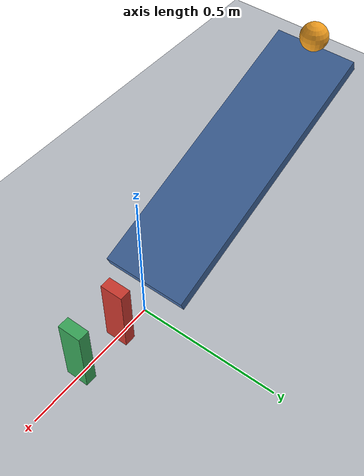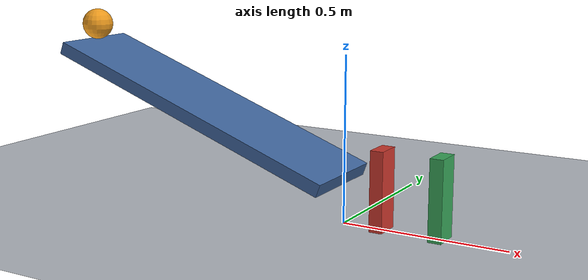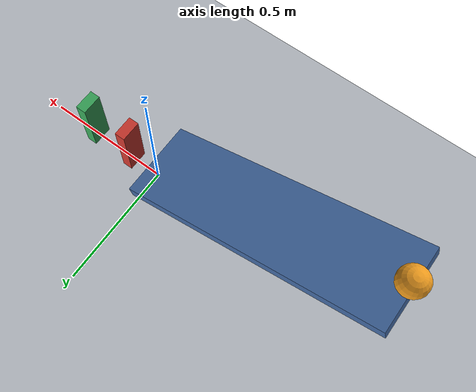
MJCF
<mujoco model="ramp_ball_domino_chain">
  <compiler angle="radian" inertiafromgeom="true"/>
  <option timestep="0.002" gravity="0 0 -9.81" integrator="implicitfast" cone="elliptic" iterations="100" tolerance="1e-10"/>
  <statistic center="-0.30 0 0.25" extent="1.60"/>

  <worldbody>
    <light name="overhead" pos="-0.3 -1 3" dir="0 0 -1" diffuse="0.85 0.85 0.85"/>
    <geom name="floor" type="plane" size="4 3 0.1" friction="0.70 0.005 0.005" condim="6" solref="0.008 0.690107" solimp="0.99 0.99 0.001" rgba="0.72 0.74 0.77 1"/>

    <!-- The upper deck is 1.00 m long and 0.30 m wide, descending
         toward +x at 20 degrees. Its low-end surface is (0, 0, 0.15). -->
    <body name="ramp1" pos="-0.476686713 0 0.302216219" quat="0.984807753 0 0.173648178 0">
      <geom name="ramp1_deck" type="box" size="0.50 0.15 0.02" friction="0.70 0.005 0.005" condim="6" solref="0.008 0.690107" solimp="0.99 0.99 0.001" rgba="0.25 0.40 0.62 1"/>
    </body>

    <!-- Initially tangent to the ramp's high end. -->
    <body name="ball1" pos="-0.922591614 0 0.539004774">
      <freejoint name="ball1_free"/>
      <geom name="ball1_sphere" type="sphere" size="0.05" mass="0.20" friction="0.70 0.005 0.005" condim="6" solref="0.008 0.690107" solimp="0.99 0.99 0.001" rgba="0.95 0.62 0.12 1"/>
    </body>

    <!-- Domino thickness is along x. Its incoming face is x=0.10,
         leaving a 0.10 m horizontal gap from the ramp's low edge. -->
    <body name="domino1" pos="0.12 0 0.12">
      <freejoint name="domino1_free"/>
      <geom name="domino1_box" type="box" size="0.02 0.04 0.12" mass="0.25" friction="0.70 0.005 0.005" condim="6" solref="0.008 0.690107" solimp="0.99 0.99 0.001" rgba="0.80 0.22 0.18 1"/>
    </body>

    <!-- Domino centers are separated by 0.18 m along +x. -->
    <body name="domino2" pos="0.30 0 0.12">
      <freejoint name="domino2_free"/>
      <geom name="domino2_box" type="box" size="0.02 0.04 0.12" mass="0.25" friction="0.70 0.005 0.005" condim="6" solref="0.008 0.690107" solimp="0.99 0.99 0.001" rgba="0.22 0.65 0.35 1"/>
    </body>
  </worldbody>

  <!-- Omitted qpos uses the body poses above; all initial velocities are zero. -->
  <keyframe>
    <key name="start" time="0" qvel="0 0 0 0 0 0 0 0 0 0 0 0 0 0 0 0 0 0"/>
  </keyframe>
</mujoco>
